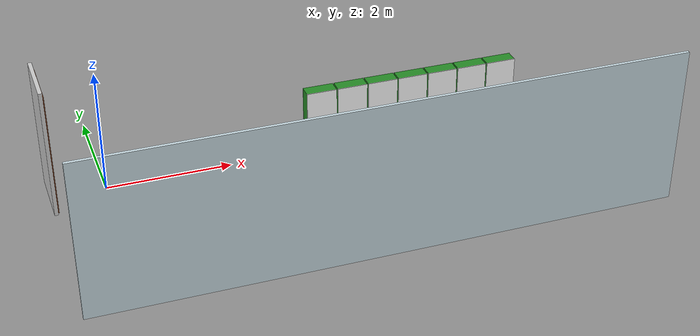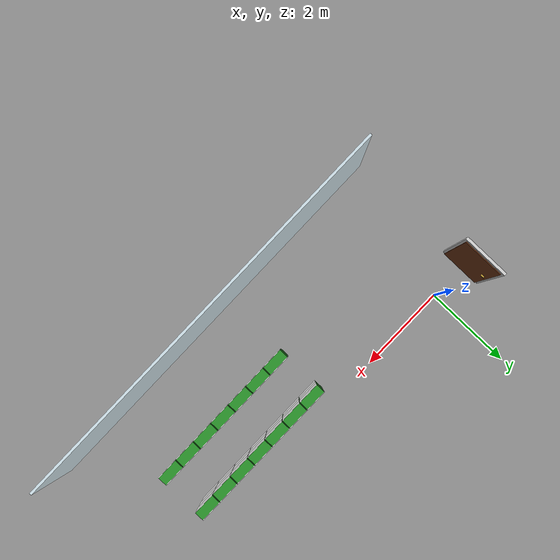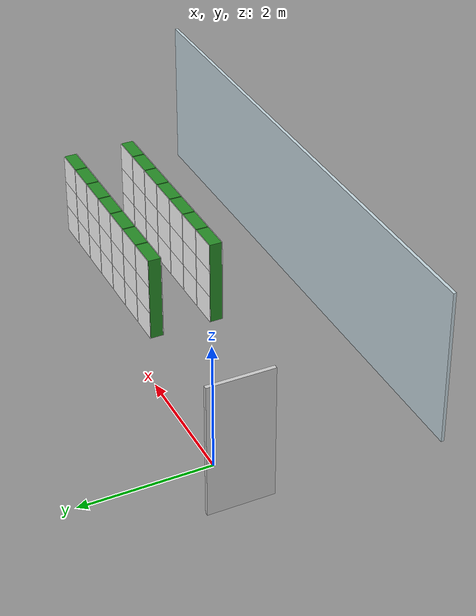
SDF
<sdf version="1.6">
 <world name="greenhouse_world">
  <model name="tomato_r0_p5">
   <static>true</static>
   <pose>3.340 -1.500 0 0 0 0</pose>
   <link name="link">
    <collision name="foliage_col">
     <pose>0 0 0.700 0 0 0</pose>
     <geometry><box><size>0.480 0.200 1.400</size></box></geometry>
    </collision>
    <visual name="foliage_core">
     <pose>0 0 0.700 0 0 0</pose>
     <geometry><box><size>0.480 0.200 1.400</size></box></geometry>
     <material><ambient>0.1 0.4 0.1 1</ambient><diffuse>0.15 0.55 0.15 1</diffuse></material>
    </visual>
    <visual name="foliage_panel_py_0">
     <pose>0 0.105 0.233 0 0 0</pose>
     <geometry><box><size>0.480 0.010 0.467</size></box></geometry>
     <material>
      <diffuse>1 1 1 1</diffuse>
      <specular>0 0 0 1</specular>
      <pbr>
       <metal>
        <albedo_map>../media/materials/textures/img18.jpg</albedo_map>
        <metalness>0.0</metalness>
        <roughness>1.0</roughness>
       </metal>
      </pbr>
     </material>
    </visual>
    <visual name="foliage_panel_py_1">
     <pose>0 0.105 0.700 0 0 0</pose>
     <geometry><box><size>0.480 0.010 0.467</size></box></geometry>
     <material>
      <diffuse>1 1 1 1</diffuse>
      <specular>0 0 0 1</specular>
      <pbr>
       <metal>
        <albedo_map>../media/materials/textures/img04.jpg</albedo_map>
        <metalness>0.0</metalness>
        <roughness>1.0</roughness>
       </metal>
      </pbr>
     </material>
    </visual>
    <visual name="foliage_panel_py_2">
     <pose>0 0.105 1.167 0 0 0</pose>
     <geometry><box><size>0.480 0.010 0.467</size></box></geometry>
     <material>
      <diffuse>1 1 1 1</diffuse>
      <specular>0 0 0 1</specular>
      <pbr>
       <metal>
        <albedo_map>../media/materials/textures/img12.jpg</albedo_map>
        <metalness>0.0</metalness>
        <roughness>1.0</roughness>
       </metal>
      </pbr>
     </material>
    </visual>
    <visual name="foliage_panel_ny_0">
     <pose>0 -0.105 0.233 0 3.14159 0</pose>
     <geometry><box><size>0.480 0.010 0.467</size></box></geometry>
     <material>
      <diffuse>1 1 1 1</diffuse>
      <specular>0 0 0 1</specular>
      <pbr>
       <metal>
        <albedo_map>../media/materials/textures/img14.jpg</albedo_map>
        <metalness>0.0</metalness>
        <roughness>1.0</roughness>
       </metal>
      </pbr>
     </material>
    </visual>
    <visual name="foliage_panel_ny_1">
     <pose>0 -0.105 0.700 0 3.14159 0</pose>
     <geometry><box><size>0.480 0.010 0.467</size></box></geometry>
     <material>
      <diffuse>1 1 1 1</diffuse>
      <specular>0 0 0 1</specular>
      <pbr>
       <metal>
        <albedo_map>../media/materials/textures/img11.jpg</albedo_map>
        <metalness>0.0</metalness>
        <roughness>1.0</roughness>
       </metal>
      </pbr>
     </material>
    </visual>
    <visual name="foliage_panel_ny_2">
     <pose>0 -0.105 1.167 0 3.14159 0</pose>
     <geometry><box><size>0.480 0.010 0.467</size></box></geometry>
     <material>
      <diffuse>1 1 1 1</diffuse>
      <specular>0 0 0 1</specular>
      <pbr>
       <metal>
        <albedo_map>../media/materials/textures/img20.jpg</albedo_map>
        <metalness>0.0</metalness>
        <roughness>1.0</roughness>
       </metal>
      </pbr>
     </material>
    </visual>
   </link>
  </model>
  <model name="tomato_r0_p6">
   <static>true</static>
   <pose>3.840 -1.500 0 0 0 0</pose>
   <link name="link">
    <collision name="foliage_col">
     <pose>0 0 0.700 0 0 0</pose>
     <geometry><box><size>0.480 0.200 1.400</size></box></geometry>
    </collision>
    <visual name="foliage_core">
     <pose>0 0 0.700 0 0 0</pose>
     <geometry><box><size>0.480 0.200 1.400</size></box></geometry>
     <material><ambient>0.1 0.4 0.1 1</ambient><diffuse>0.15 0.55 0.15 1</diffuse></material>
    </visual>
    <visual name="foliage_panel_py_0">
     <pose>0 0.105 0.233 0 0 0</pose>
     <geometry><box><size>0.480 0.010 0.467</size></box></geometry>
     <material>
      <diffuse>1 1 1 1</diffuse>
      <specular>0 0 0 1</specular>
      <pbr>
       <metal>
        <albedo_map>../media/materials/textures/img21.jpg</albedo_map>
        <metalness>0.0</metalness>
        <roughness>1.0</roughness>
       </metal>
      </pbr>
     </material>
    </visual>
    <visual name="foliage_panel_py_1">
     <pose>0 0.105 0.700 0 0 0</pose>
     <geometry><box><size>0.480 0.010 0.467</size></box></geometry>
     <material>
      <diffuse>1 1 1 1</diffuse>
      <specular>0 0 0 1</specular>
      <pbr>
       <metal>
        <albedo_map>../media/materials/textures/img07.jpg</albedo_map>
        <metalness>0.0</metalness>
        <roughness>1.0</roughness>
       </metal>
      </pbr>
     </material>
    </visual>
    <visual name="foliage_panel_py_2">
     <pose>0 0.105 1.167 0 0 0</pose>
     <geometry><box><size>0.480 0.010 0.467</size></box></geometry>
     <material>
      <diffuse>1 1 1 1</diffuse>
      <specular>0 0 0 1</specular>
      <pbr>
       <metal>
        <albedo_map>../media/materials/textures/img18.jpg</albedo_map>
        <metalness>0.0</metalness>
        <roughness>1.0</roughness>
       </metal>
      </pbr>
     </material>
    </visual>
    <visual name="foliage_panel_ny_0">
     <pose>0 -0.105 0.233 0 3.14159 0</pose>
     <geometry><box><size>0.480 0.010 0.467</size></box></geometry>
     <material>
      <diffuse>1 1 1 1</diffuse>
      <specular>0 0 0 1</specular>
      <pbr>
       <metal>
        <albedo_map>../media/materials/textures/img16.jpg</albedo_map>
        <metalness>0.0</metalness>
        <roughness>1.0</roughness>
       </metal>
      </pbr>
     </material>
    </visual>
    <visual name="foliage_panel_ny_1">
     <pose>0 -0.105 0.700 0 3.14159 0</pose>
     <geometry><box><size>0.480 0.010 0.467</size></box></geometry>
     <material>
      <diffuse>1 1 1 1</diffuse>
      <specular>0 0 0 1</specular>
      <pbr>
       <metal>
        <albedo_map>../media/materials/textures/img15.jpg</albedo_map>
        <metalness>0.0</metalness>
        <roughness>1.0</roughness>
       </metal>
      </pbr>
     </material>
    </visual>
    <visual name="foliage_panel_ny_2">
     <pose>0 -0.105 1.167 0 3.14159 0</pose>
     <geometry><box><size>0.480 0.010 0.467</size></box></geometry>
     <material>
      <diffuse>1 1 1 1</diffuse>
      <specular>0 0 0 1</specular>
      <pbr>
       <metal>
        <albedo_map>../media/materials/textures/img17.jpg</albedo_map>
        <metalness>0.0</metalness>
        <roughness>1.0</roughness>
       </metal>
      </pbr>
     </material>
    </visual>
   </link>
  </model>
  <model name="tomato_r0_p7">
   <static>true</static>
   <pose>4.340 -1.500 0 0 0 0</pose>
   <link name="link">
    <collision name="foliage_col">
     <pose>0 0 0.700 0 0 0</pose>
     <geometry><box><size>0.480 0.200 1.400</size></box></geometry>
    </collision>
    <visual name="foliage_core">
     <pose>0 0 0.700 0 0 0</pose>
     <geometry><box><size>0.480 0.200 1.400</size></box></geometry>
     <material><ambient>0.1 0.4 0.1 1</ambient><diffuse>0.15 0.55 0.15 1</diffuse></material>
    </visual>
    <visual name="foliage_panel_py_0">
     <pose>0 0.105 0.233 0 0 0</pose>
     <geometry><box><size>0.480 0.010 0.467</size></box></geometry>
     <material>
      <diffuse>1 1 1 1</diffuse>
      <specular>0 0 0 1</specular>
      <pbr>
       <metal>
        <albedo_map>../media/materials/textures/img09.jpg</albedo_map>
        <metalness>0.0</metalness>
        <roughness>1.0</roughness>
       </metal>
      </pbr>
     </material>
    </visual>
    <visual name="foliage_panel_py_1">
     <pose>0 0.105 0.700 0 0 0</pose>
     <geometry><box><size>0.480 0.010 0.467</size></box></geometry>
     <material>
      <diffuse>1 1 1 1</diffuse>
      <specular>0 0 0 1</specular>
      <pbr>
       <metal>
        <albedo_map>../media/materials/textures/img02.jpg</albedo_map>
        <metalness>0.0</metalness>
        <roughness>1.0</roughness>
       </metal>
      </pbr>
     </material>
    </visual>
    <visual name="foliage_panel_py_2">
     <pose>0 0.105 1.167 0 0 0</pose>
     <geometry><box><size>0.480 0.010 0.467</size></box></geometry>
     <material>
      <diffuse>1 1 1 1</diffuse>
      <specular>0 0 0 1</specular>
      <pbr>
       <metal>
        <albedo_map>../media/materials/textures/img18.jpg</albedo_map>
        <metalness>0.0</metalness>
        <roughness>1.0</roughness>
       </metal>
      </pbr>
     </material>
    </visual>
    <visual name="foliage_panel_ny_0">
     <pose>0 -0.105 0.233 0 3.14159 0</pose>
     <geometry><box><size>0.480 0.010 0.467</size></box></geometry>
     <material>
      <diffuse>1 1 1 1</diffuse>
      <specular>0 0 0 1</specular>
      <pbr>
       <metal>
        <albedo_map>../media/materials/textures/img01.jpg</albedo_map>
        <metalness>0.0</metalness>
        <roughness>1.0</roughness>
       </metal>
      </pbr>
     </material>
    </visual>
    <visual name="foliage_panel_ny_1">
     <pose>0 -0.105 0.700 0 3.14159 0</pose>
     <geometry><box><size>0.480 0.010 0.467</size></box></geometry>
     <material>
      <diffuse>1 1 1 1</diffuse>
      <specular>0 0 0 1</specular>
      <pbr>
       <metal>
        <albedo_map>../media/materials/textures/img03.jpg</albedo_map>
        <metalness>0.0</metalness>
        <roughness>1.0</roughness>
       </metal>
      </pbr>
     </material>
    </visual>
    <visual name="foliage_panel_ny_2">
     <pose>0 -0.105 1.167 0 3.14159 0</pose>
     <geometry><box><size>0.480 0.010 0.467</size></box></geometry>
     <material>
      <diffuse>1 1 1 1</diffuse>
      <specular>0 0 0 1</specular>
      <pbr>
       <metal>
        <albedo_map>../media/materials/textures/img24.jpg</albedo_map>
        <metalness>0.0</metalness>
        <roughness>1.0</roughness>
       </metal>
      </pbr>
     </material>
    </visual>
   </link>
  </model>
  <model name="tomato_r0_p8">
   <static>true</static>
   <pose>4.840 -1.500 0 0 0 0</pose>
   <link name="link">
    <collision name="foliage_col">
     <pose>0 0 0.700 0 0 0</pose>
     <geometry><box><size>0.480 0.200 1.400</size></box></geometry>
    </collision>
    <visual name="foliage_core">
     <pose>0 0 0.700 0 0 0</pose>
     <geometry><box><size>0.480 0.200 1.400</size></box></geometry>
     <material><ambient>0.1 0.4 0.1 1</ambient><diffuse>0.15 0.55 0.15 1</diffuse></material>
    </visual>
    <visual name="foliage_panel_py_0">
     <pose>0 0.105 0.233 0 0 0</pose>
     <geometry><box><size>0.480 0.010 0.467</size></box></geometry>
     <material>
      <diffuse>1 1 1 1</diffuse>
      <specular>0 0 0 1</specular>
      <pbr>
       <metal>
        <albedo_map>../media/materials/textures/img13.jpg</albedo_map>
        <metalness>0.0</metalness>
        <roughness>1.0</roughness>
       </metal>
      </pbr>
     </material>
    </visual>
    <visual name="foliage_panel_py_1">
     <pose>0 0.105 0.700 0 0 0</pose>
     <geometry><box><size>0.480 0.010 0.467</size></box></geometry>
     <material>
      <diffuse>1 1 1 1</diffuse>
      <specular>0 0 0 1</specular>
      <pbr>
       <metal>
        <albedo_map>../media/materials/textures/img23.jpg</albedo_map>
        <metalness>0.0</metalness>
        <roughness>1.0</roughness>
       </metal>
      </pbr>
     </material>
    </visual>
    <visual name="foliage_panel_py_2">
     <pose>0 0.105 1.167 0 0 0</pose>
     <geometry><box><size>0.480 0.010 0.467</size></box></geometry>
     <material>
      <diffuse>1 1 1 1</diffuse>
      <specular>0 0 0 1</specular>
      <pbr>
       <metal>
        <albedo_map>../media/materials/textures/img22.jpg</albedo_map>
        <metalness>0.0</metalness>
        <roughness>1.0</roughness>
       </metal>
      </pbr>
     </material>
    </visual>
    <visual name="foliage_panel_ny_0">
     <pose>0 -0.105 0.233 0 3.14159 0</pose>
     <geometry><box><size>0.480 0.010 0.467</size></box></geometry>
     <material>
      <diffuse>1 1 1 1</diffuse>
      <specular>0 0 0 1</specular>
      <pbr>
       <metal>
        <albedo_map>../media/materials/textures/img21.jpg</albedo_map>
        <metalness>0.0</metalness>
        <roughness>1.0</roughness>
       </metal>
      </pbr>
     </material>
    </visual>
    <visual name="foliage_panel_ny_1">
     <pose>0 -0.105 0.700 0 3.14159 0</pose>
     <geometry><box><size>0.480 0.010 0.467</size></box></geometry>
     <material>
      <diffuse>1 1 1 1</diffuse>
      <specular>0 0 0 1</specular>
      <pbr>
       <metal>
        <albedo_map>../media/materials/textures/img01.jpg</albedo_map>
        <metalness>0.0</metalness>
        <roughness>1.0</roughness>
       </metal>
      </pbr>
     </material>
    </visual>
    <visual name="foliage_panel_ny_2">
     <pose>0 -0.105 1.167 0 3.14159 0</pose>
     <geometry><box><size>0.480 0.010 0.467</size></box></geometry>
     <material>
      <diffuse>1 1 1 1</diffuse>
      <specular>0 0 0 1</specular>
      <pbr>
       <metal>
        <albedo_map>../media/materials/textures/img20.jpg</albedo_map>
        <metalness>0.0</metalness>
        <roughness>1.0</roughness>
       </metal>
      </pbr>
     </material>
    </visual>
   </link>
  </model>
  <model name="tomato_r0_p9">
   <static>true</static>
   <pose>5.340 -1.500 0 0 0 0</pose>
   <link name="link">
    <collision name="foliage_col">
     <pose>0 0 0.700 0 0 0</pose>
     <geometry><box><size>0.480 0.200 1.400</size></box></geometry>
    </collision>
    <visual name="foliage_core">
     <pose>0 0 0.700 0 0 0</pose>
     <geometry><box><size>0.480 0.200 1.400</size></box></geometry>
     <material><ambient>0.1 0.4 0.1 1</ambient><diffuse>0.15 0.55 0.15 1</diffuse></material>
    </visual>
    <visual name="foliage_panel_py_0">
     <pose>0 0.105 0.233 0 0 0</pose>
     <geometry><box><size>0.480 0.010 0.467</size></box></geometry>
     <material>
      <diffuse>1 1 1 1</diffuse>
      <specular>0 0 0 1</specular>
      <pbr>
       <metal>
        <albedo_map>../media/materials/textures/img16.jpg</albedo_map>
        <metalness>0.0</metalness>
        <roughness>1.0</roughness>
       </metal>
      </pbr>
     </material>
    </visual>
    <visual name="foliage_panel_py_1">
     <pose>0 0.105 0.700 0 0 0</pose>
     <geometry><box><size>0.480 0.010 0.467</size></box></geometry>
     <material>
      <diffuse>1 1 1 1</diffuse>
      <specular>0 0 0 1</specular>
      <pbr>
       <metal>
        <albedo_map>../media/materials/textures/img11.jpg</albedo_map>
        <metalness>0.0</metalness>
        <roughness>1.0</roughness>
       </metal>
      </pbr>
     </material>
    </visual>
    <visual name="foliage_panel_py_2">
     <pose>0 0.105 1.167 0 0 0</pose>
     <geometry><box><size>0.480 0.010 0.467</size></box></geometry>
     <material>
      <diffuse>1 1 1 1</diffuse>
      <specular>0 0 0 1</specular>
      <pbr>
       <metal>
        <albedo_map>../media/materials/textures/img08.jpg</albedo_map>
        <metalness>0.0</metalness>
        <roughness>1.0</roughness>
       </metal>
      </pbr>
     </material>
    </visual>
    <visual name="foliage_panel_ny_0">
     <pose>0 -0.105 0.233 0 3.14159 0</pose>
     <geometry><box><size>0.480 0.010 0.467</size></box></geometry>
     <material>
      <diffuse>1 1 1 1</diffuse>
      <specular>0 0 0 1</specular>
      <pbr>
       <metal>
        <albedo_map>../media/materials/textures/img24.jpg</albedo_map>
        <metalness>0.0</metalness>
        <roughness>1.0</roughness>
       </metal>
      </pbr>
     </material>
    </visual>
    <visual name="foliage_panel_ny_1">
     <pose>0 -0.105 0.700 0 3.14159 0</pose>
     <geometry><box><size>0.480 0.010 0.467</size></box></geometry>
     <material>
      <diffuse>1 1 1 1</diffuse>
      <specular>0 0 0 1</specular>
      <pbr>
       <metal>
        <albedo_map>../media/materials/textures/img11.jpg</albedo_map>
        <metalness>0.0</metalness>
        <roughness>1.0</roughness>
       </metal>
      </pbr>
     </material>
    </visual>
    <visual name="foliage_panel_ny_2">
     <pose>0 -0.105 1.167 0 3.14159 0</pose>
     <geometry><box><size>0.480 0.010 0.467</size></box></geometry>
     <material>
      <diffuse>1 1 1 1</diffuse>
      <specular>0 0 0 1</specular>
      <pbr>
       <metal>
        <albedo_map>../media/materials/textures/img23.jpg</albedo_map>
        <metalness>0.0</metalness>
        <roughness>1.0</roughness>
       </metal>
      </pbr>
     </material>
    </visual>
   </link>
  </model>
  <model name="tomato_r0_p10">
   <static>true</static>
   <pose>5.840 -1.500 0 0 0 0</pose>
   <link name="link">
    <collision name="foliage_col">
     <pose>0 0 0.700 0 0 0</pose>
     <geometry><box><size>0.480 0.200 1.400</size></box></geometry>
    </collision>
    <visual name="foliage_core">
     <pose>0 0 0.700 0 0 0</pose>
     <geometry><box><size>0.480 0.200 1.400</size></box></geometry>
     <material><ambient>0.1 0.4 0.1 1</ambient><diffuse>0.15 0.55 0.15 1</diffuse></material>
    </visual>
    <visual name="foliage_panel_py_0">
     <pose>0 0.105 0.233 0 0 0</pose>
     <geometry><box><size>0.480 0.010 0.467</size></box></geometry>
     <material>
      <diffuse>1 1 1 1</diffuse>
      <specular>0 0 0 1</specular>
      <pbr>
       <metal>
        <albedo_map>../media/materials/textures/img03.jpg</albedo_map>
        <metalness>0.0</metalness>
        <roughness>1.0</roughness>
       </metal>
      </pbr>
     </material>
    </visual>
    <visual name="foliage_panel_py_1">
     <pose>0 0.105 0.700 0 0 0</pose>
     <geometry><box><size>0.480 0.010 0.467</size></box></geometry>
     <material>
      <diffuse>1 1 1 1</diffuse>
      <specular>0 0 0 1</specular>
      <pbr>
       <metal>
        <albedo_map>../media/materials/textures/img07.jpg</albedo_map>
        <metalness>0.0</metalness>
        <roughness>1.0</roughness>
       </metal>
      </pbr>
     </material>
    </visual>
    <visual name="foliage_panel_py_2">
     <pose>0 0.105 1.167 0 0 0</pose>
     <geometry><box><size>0.480 0.010 0.467</size></box></geometry>
     <material>
      <diffuse>1 1 1 1</diffuse>
      <specular>0 0 0 1</specular>
      <pbr>
       <metal>
        <albedo_map>../media/materials/textures/img19.jpg</albedo_map>
        <metalness>0.0</metalness>
        <roughness>1.0</roughness>
       </metal>
      </pbr>
     </material>
    </visual>
    <visual name="foliage_panel_ny_0">
     <pose>0 -0.105 0.233 0 3.14159 0</pose>
     <geometry><box><size>0.480 0.010 0.467</size></box></geometry>
     <material>
      <diffuse>1 1 1 1</diffuse>
      <specular>0 0 0 1</specular>
      <pbr>
       <metal>
        <albedo_map>../media/materials/textures/img08.jpg</albedo_map>
        <metalness>0.0</metalness>
        <roughness>1.0</roughness>
       </metal>
      </pbr>
     </material>
    </visual>
    <visual name="foliage_panel_ny_1">
     <pose>0 -0.105 0.700 0 3.14159 0</pose>
     <geometry><box><size>0.480 0.010 0.467</size></box></geometry>
     <material>
      <diffuse>1 1 1 1</diffuse>
      <specular>0 0 0 1</specular>
      <pbr>
       <metal>
        <albedo_map>../media/materials/textures/img08.jpg</albedo_map>
        <metalness>0.0</metalness>
        <roughness>1.0</roughness>
       </metal>
      </pbr>
     </material>
    </visual>
    <visual name="foliage_panel_ny_2">
     <pose>0 -0.105 1.167 0 3.14159 0</pose>
     <geometry><box><size>0.480 0.010 0.467</size></box></geometry>
     <material>
      <diffuse>1 1 1 1</diffuse>
      <specular>0 0 0 1</specular>
      <pbr>
       <metal>
        <albedo_map>../media/materials/textures/img05.jpg</albedo_map>
        <metalness>0.0</metalness>
        <roughness>1.0</roughness>
       </metal>
      </pbr>
     </material>
    </visual>
   </link>
  </model>
  <model name="tomato_r0_p11">
   <static>true</static>
   <pose>6.340 -1.500 0 0 0 0</pose>
   <link name="link">
    <collision name="foliage_col">
     <pose>0 0 0.700 0 0 0</pose>
     <geometry><box><size>0.480 0.200 1.400</size></box></geometry>
    </collision>
    <visual name="foliage_core">
     <pose>0 0 0.700 0 0 0</pose>
     <geometry><box><size>0.480 0.200 1.400</size></box></geometry>
     <material><ambient>0.1 0.4 0.1 1</ambient><diffuse>0.15 0.55 0.15 1</diffuse></material>
    </visual>
    <visual name="foliage_panel_py_0">
     <pose>0 0.105 0.233 0 0 0</pose>
     <geometry><box><size>0.480 0.010 0.467</size></box></geometry>
     <material>
      <diffuse>1 1 1 1</diffuse>
      <specular>0 0 0 1</specular>
      <pbr>
       <metal>
        <albedo_map>../media/materials/textures/img18.jpg</albedo_map>
        <metalness>0.0</metalness>
        <roughness>1.0</roughness>
       </metal>
      </pbr>
     </material>
    </visual>
    <visual name="foliage_panel_py_1">
     <pose>0 0.105 0.700 0 0 0</pose>
     <geometry><box><size>0.480 0.010 0.467</size></box></geometry>
     <material>
      <diffuse>1 1 1 1</diffuse>
      <specular>0 0 0 1</specular>
      <pbr>
       <metal>
        <albedo_map>../media/materials/textures/img15.jpg</albedo_map>
        <metalness>0.0</metalness>
        <roughness>1.0</roughness>
       </metal>
      </pbr>
     </material>
    </visual>
    <visual name="foliage_panel_py_2">
     <pose>0 0.105 1.167 0 0 0</pose>
     <geometry><box><size>0.480 0.010 0.467</size></box></geometry>
     <material>
      <diffuse>1 1 1 1</diffuse>
      <specular>0 0 0 1</specular>
      <pbr>
       <metal>
        <albedo_map>../media/materials/textures/img03.jpg</albedo_map>
        <metalness>0.0</metalness>
        <roughness>1.0</roughness>
       </metal>
      </pbr>
     </material>
    </visual>
    <visual name="foliage_panel_ny_0">
     <pose>0 -0.105 0.233 0 3.14159 0</pose>
     <geometry><box><size>0.480 0.010 0.467</size></box></geometry>
     <material>
      <diffuse>1 1 1 1</diffuse>
      <specular>0 0 0 1</specular>
      <pbr>
       <metal>
        <albedo_map>../media/materials/textures/img03.jpg</albedo_map>
        <metalness>0.0</metalness>
        <roughness>1.0</roughness>
       </metal>
      </pbr>
     </material>
    </visual>
    <visual name="foliage_panel_ny_1">
     <pose>0 -0.105 0.700 0 3.14159 0</pose>
     <geometry><box><size>0.480 0.010 0.467</size></box></geometry>
     <material>
      <diffuse>1 1 1 1</diffuse>
      <specular>0 0 0 1</specular>
      <pbr>
       <metal>
        <albedo_map>../media/materials/textures/img11.jpg</albedo_map>
        <metalness>0.0</metalness>
        <roughness>1.0</roughness>
       </metal>
      </pbr>
     </material>
    </visual>
    <visual name="foliage_panel_ny_2">
     <pose>0 -0.105 1.167 0 3.14159 0</pose>
     <geometry><box><size>0.480 0.010 0.467</size></box></geometry>
     <material>
      <diffuse>1 1 1 1</diffuse>
      <specular>0 0 0 1</specular>
      <pbr>
       <metal>
        <albedo_map>../media/materials/textures/img17.jpg</albedo_map>
        <metalness>0.0</metalness>
        <roughness>1.0</roughness>
       </metal>
      </pbr>
     </material>
    </visual>
   </link>
  </model>
  <model name="tomato_r1_p5">
   <static>true</static>
   <pose>3.340 -0.500 0 0 0 0</pose>
   <link name="link">
    <collision name="foliage_col">
     <pose>0 0 0.700 0 0 0</pose>
     <geometry><box><size>0.480 0.200 1.400</size></box></geometry>
    </collision>
    <visual name="foliage_core">
     <pose>0 0 0.700 0 0 0</pose>
     <geometry><box><size>0.480 0.200 1.400</size></box></geometry>
     <material><ambient>0.1 0.4 0.1 1</ambient><diffuse>0.15 0.55 0.15 1</diffuse></material>
    </visual>
    <visual name="foliage_panel_py_0">
     <pose>0 0.105 0.233 0 0 0</pose>
     <geometry><box><size>0.480 0.010 0.467</size></box></geometry>
     <material>
      <diffuse>1 1 1 1</diffuse>
      <specular>0 0 0 1</specular>
      <pbr>
       <metal>
        <albedo_map>../media/materials/textures/img16.jpg</albedo_map>
        <metalness>0.0</metalness>
        <roughness>1.0</roughness>
       </metal>
      </pbr>
     </material>
    </visual>
    <visual name="foliage_panel_py_1">
     <pose>0 0.105 0.700 0 0 0</pose>
     <geometry><box><size>0.480 0.010 0.467</size></box></geometry>
     <material>
      <diffuse>1 1 1 1</diffuse>
      <specular>0 0 0 1</specular>
      <pbr>
       <metal>
        <albedo_map>../media/materials/textures/img03.jpg</albedo_map>
        <metalness>0.0</metalness>
        <roughness>1.0</roughness>
       </metal>
      </pbr>
     </material>
    </visual>
    <visual name="foliage_panel_py_2">
     <pose>0 0.105 1.167 0 0 0</pose>
     <geometry><box><size>0.480 0.010 0.467</size></box></geometry>
     <material>
      <diffuse>1 1 1 1</diffuse>
      <specular>0 0 0 1</specular>
      <pbr>
       <metal>
        <albedo_map>../media/materials/textures/img03.jpg</albedo_map>
        <metalness>0.0</metalness>
        <roughness>1.0</roughness>
       </metal>
      </pbr>
     </material>
    </visual>
    <visual name="foliage_panel_ny_0">
     <pose>0 -0.105 0.233 0 3.14159 0</pose>
     <geometry><box><size>0.480 0.010 0.467</size></box></geometry>
     <material>
      <diffuse>1 1 1 1</diffuse>
      <specular>0 0 0 1</specular>
      <pbr>
       <metal>
        <albedo_map>../media/materials/textures/img22.jpg</albedo_map>
        <metalness>0.0</metalness>
        <roughness>1.0</roughness>
       </metal>
      </pbr>
     </material>
    </visual>
    <visual name="foliage_panel_ny_1">
     <pose>0 -0.105 0.700 0 3.14159 0</pose>
     <geometry><box><size>0.480 0.010 0.467</size></box></geometry>
     <material>
      <diffuse>1 1 1 1</diffuse>
      <specular>0 0 0 1</specular>
      <pbr>
       <metal>
        <albedo_map>../media/materials/textures/img05.jpg</albedo_map>
        <metalness>0.0</metalness>
        <roughness>1.0</roughness>
       </metal>
      </pbr>
     </material>
    </visual>
    <visual name="foliage_panel_ny_2">
     <pose>0 -0.105 1.167 0 3.14159 0</pose>
     <geometry><box><size>0.480 0.010 0.467</size></box></geometry>
     <material>
      <diffuse>1 1 1 1</diffuse>
      <specular>0 0 0 1</specular>
      <pbr>
       <metal>
        <albedo_map>../media/materials/textures/img05.jpg</albedo_map>
        <metalness>0.0</metalness>
        <roughness>1.0</roughness>
       </metal>
      </pbr>
     </material>
    </visual>
   </link>
  </model>
  <model name="tomato_r1_p6">
   <static>true</static>
   <pose>3.840 -0.500 0 0 0 0</pose>
   <link name="link">
    <collision name="foliage_col">
     <pose>0 0 0.700 0 0 0</pose>
     <geometry><box><size>0.480 0.200 1.400</size></box></geometry>
    </collision>
    <visual name="foliage_core">
     <pose>0 0 0.700 0 0 0</pose>
     <geometry><box><size>0.480 0.200 1.400</size></box></geometry>
     <material><ambient>0.1 0.4 0.1 1</ambient><diffuse>0.15 0.55 0.15 1</diffuse></material>
    </visual>
    <visual name="foliage_panel_py_0">
     <pose>0 0.105 0.233 0 0 0</pose>
     <geometry><box><size>0.480 0.010 0.467</size></box></geometry>
     <material>
      <diffuse>1 1 1 1</diffuse>
      <specular>0 0 0 1</specular>
      <pbr>
       <metal>
        <albedo_map>../media/materials/textures/img02.jpg</albedo_map>
        <metalness>0.0</metalness>
        <roughness>1.0</roughness>
       </metal>
      </pbr>
     </material>
    </visual>
    <visual name="foliage_panel_py_1">
     <pose>0 0.105 0.700 0 0 0</pose>
     <geometry><box><size>0.480 0.010 0.467</size></box></geometry>
     <material>
      <diffuse>1 1 1 1</diffuse>
      <specular>0 0 0 1</specular>
      <pbr>
       <metal>
        <albedo_map>../media/materials/textures/img03.jpg</albedo_map>
        <metalness>0.0</metalness>
        <roughness>1.0</roughness>
       </metal>
      </pbr>
     </material>
    </visual>
    <visual name="foliage_panel_py_2">
     <pose>0 0.105 1.167 0 0 0</pose>
     <geometry><box><size>0.480 0.010 0.467</size></box></geometry>
     <material>
      <diffuse>1 1 1 1</diffuse>
      <specular>0 0 0 1</specular>
      <pbr>
       <metal>
        <albedo_map>../media/materials/textures/img23.jpg</albedo_map>
        <metalness>0.0</metalness>
        <roughness>1.0</roughness>
       </metal>
      </pbr>
     </material>
    </visual>
    <visual name="foliage_panel_ny_0">
     <pose>0 -0.105 0.233 0 3.14159 0</pose>
     <geometry><box><size>0.480 0.010 0.467</size></box></geometry>
     <material>
      <diffuse>1 1 1 1</diffuse>
      <specular>0 0 0 1</specular>
      <pbr>
       <metal>
        <albedo_map>../media/materials/textures/img18.jpg</albedo_map>
        <metalness>0.0</metalness>
        <roughness>1.0</roughness>
       </metal>
      </pbr>
     </material>
    </visual>
    <visual name="foliage_panel_ny_1">
     <pose>0 -0.105 0.700 0 3.14159 0</pose>
     <geometry><box><size>0.480 0.010 0.467</size></box></geometry>
     <material>
      <diffuse>1 1 1 1</diffuse>
      <specular>0 0 0 1</specular>
      <pbr>
       <metal>
        <albedo_map>../media/materials/textures/img22.jpg</albedo_map>
        <metalness>0.0</metalness>
        <roughness>1.0</roughness>
       </metal>
      </pbr>
     </material>
    </visual>
    <visual name="foliage_panel_ny_2">
     <pose>0 -0.105 1.167 0 3.14159 0</pose>
     <geometry><box><size>0.480 0.010 0.467</size></box></geometry>
     <material>
      <diffuse>1 1 1 1</diffuse>
      <specular>0 0 0 1</specular>
      <pbr>
       <metal>
        <albedo_map>../media/materials/textures/img13.jpg</albedo_map>
        <metalness>0.0</metalness>
        <roughness>1.0</roughness>
       </metal>
      </pbr>
     </material>
    </visual>
   </link>
  </model>
  <model name="tomato_r1_p7">
   <static>true</static>
   <pose>4.340 -0.500 0 0 0 0</pose>
   <link name="link">
    <collision name="foliage_col">
     <pose>0 0 0.700 0 0 0</pose>
     <geometry><box><size>0.480 0.200 1.400</size></box></geometry>
    </collision>
    <visual name="foliage_core">
     <pose>0 0 0.700 0 0 0</pose>
     <geometry><box><size>0.480 0.200 1.400</size></box></geometry>
     <material><ambient>0.1 0.4 0.1 1</ambient><diffuse>0.15 0.55 0.15 1</diffuse></material>
    </visual>
    <visual name="foliage_panel_py_0">
     <pose>0 0.105 0.233 0 0 0</pose>
     <geometry><box><size>0.480 0.010 0.467</size></box></geometry>
     <material>
      <diffuse>1 1 1 1</diffuse>
      <specular>0 0 0 1</specular>
      <pbr>
       <metal>
        <albedo_map>../media/materials/textures/img23.jpg</albedo_map>
        <metalness>0.0</metalness>
        <roughness>1.0</roughness>
       </metal>
      </pbr>
     </material>
    </visual>
    <visual name="foliage_panel_py_1">
     <pose>0 0.105 0.700 0 0 0</pose>
     <geometry><box><size>0.480 0.010 0.467</size></box></geometry>
     <material>
      <diffuse>1 1 1 1</diffuse>
      <specular>0 0 0 1</specular>
      <pbr>
       <metal>
        <albedo_map>../media/materials/textures/img17.jpg</albedo_map>
        <metalness>0.0</metalness>
        <roughness>1.0</roughness>
       </metal>
      </pbr>
     </material>
    </visual>
    <visual name="foliage_panel_py_2">
     <pose>0 0.105 1.167 0 0 0</pose>
     <geometry><box><size>0.480 0.010 0.467</size></box></geometry>
     <material>
      <diffuse>1 1 1 1</diffuse>
      <specular>0 0 0 1</specular>
      <pbr>
       <metal>
        <albedo_map>../media/materials/textures/img09.jpg</albedo_map>
        <metalness>0.0</metalness>
        <roughness>1.0</roughness>
       </metal>
      </pbr>
     </material>
    </visual>
    <visual name="foliage_panel_ny_0">
     <pose>0 -0.105 0.233 0 3.14159 0</pose>
     <geometry><box><size>0.480 0.010 0.467</size></box></geometry>
     <material>
      <diffuse>1 1 1 1</diffuse>
      <specular>0 0 0 1</specular>
      <pbr>
       <metal>
        <albedo_map>../media/materials/textures/img17.jpg</albedo_map>
        <metalness>0.0</metalness>
        <roughness>1.0</roughness>
       </metal>
      </pbr>
     </material>
    </visual>
    <visual name="foliage_panel_ny_1">
     <pose>0 -0.105 0.700 0 3.14159 0</pose>
     <geometry><box><size>0.480 0.010 0.467</size></box></geometry>
     <material>
      <diffuse>1 1 1 1</diffuse>
      <specular>0 0 0 1</specular>
      <pbr>
       <metal>
        <albedo_map>../media/materials/textures/img08.jpg</albedo_map>
        <metalness>0.0</metalness>
        <roughness>1.0</roughness>
       </metal>
      </pbr>
     </material>
    </visual>
    <visual name="foliage_panel_ny_2">
     <pose>0 -0.105 1.167 0 3.14159 0</pose>
     <geometry><box><size>0.480 0.010 0.467</size></box></geometry>
     <material>
      <diffuse>1 1 1 1</diffuse>
      <specular>0 0 0 1</specular>
      <pbr>
       <metal>
        <albedo_map>../media/materials/textures/img07.jpg</albedo_map>
        <metalness>0.0</metalness>
        <roughness>1.0</roughness>
       </metal>
      </pbr>
     </material>
    </visual>
   </link>
  </model>
  <model name="tomato_r1_p8">
   <static>true</static>
   <pose>4.840 -0.500 0 0 0 0</pose>
   <link name="link">
    <collision name="foliage_col">
     <pose>0 0 0.700 0 0 0</pose>
     <geometry><box><size>0.480 0.200 1.400</size></box></geometry>
    </collision>
    <visual name="foliage_core">
     <pose>0 0 0.700 0 0 0</pose>
     <geometry><box><size>0.480 0.200 1.400</size></box></geometry>
     <material><ambient>0.1 0.4 0.1 1</ambient><diffuse>0.15 0.55 0.15 1</diffuse></material>
    </visual>
    <visual name="foliage_panel_py_0">
     <pose>0 0.105 0.233 0 0 0</pose>
     <geometry><box><size>0.480 0.010 0.467</size></box></geometry>
     <material>
      <diffuse>1 1 1 1</diffuse>
      <specular>0 0 0 1</specular>
      <pbr>
       <metal>
        <albedo_map>../media/materials/textures/img22.jpg</albedo_map>
        <metalness>0.0</metalness>
        <roughness>1.0</roughness>
       </metal>
      </pbr>
     </material>
    </visual>
    <visual name="foliage_panel_py_1">
     <pose>0 0.105 0.700 0 0 0</pose>
     <geometry><box><size>0.480 0.010 0.467</size></box></geometry>
     <material>
      <diffuse>1 1 1 1</diffuse>
      <specular>0 0 0 1</specular>
      <pbr>
       <metal>
        <albedo_map>../media/materials/textures/img19.jpg</albedo_map>
        <metalness>0.0</metalness>
        <roughness>1.0</roughness>
       </metal>
      </pbr>
     </material>
    </visual>
    <visual name="foliage_panel_py_2">
     <pose>0 0.105 1.167 0 0 0</pose>
     <geometry><box><size>0.480 0.010 0.467</size></box></geometry>
     <material>
      <diffuse>1 1 1 1</diffuse>
      <specular>0 0 0 1</specular>
      <pbr>
       <metal>
        <albedo_map>../media/materials/textures/img14.jpg</albedo_map>
        <metalness>0.0</metalness>
        <roughness>1.0</roughness>
       </metal>
      </pbr>
     </material>
    </visual>
    <visual name="foliage_panel_ny_0">
     <pose>0 -0.105 0.233 0 3.14159 0</pose>
     <geometry><box><size>0.480 0.010 0.467</size></box></geometry>
     <material>
      <diffuse>1 1 1 1</diffuse>
      <specular>0 0 0 1</specular>
      <pbr>
       <metal>
        <albedo_map>../media/materials/textures/img19.jpg</albedo_map>
        <metalness>0.0</metalness>
        <roughness>1.0</roughness>
       </metal>
      </pbr>
     </material>
    </visual>
    <visual name="foliage_panel_ny_1">
     <pose>0 -0.105 0.700 0 3.14159 0</pose>
     <geometry><box><size>0.480 0.010 0.467</size></box></geometry>
     <material>
      <diffuse>1 1 1 1</diffuse>
      <specular>0 0 0 1</specular>
      <pbr>
       <metal>
        <albedo_map>../media/materials/textures/img09.jpg</albedo_map>
        <metalness>0.0</metalness>
        <roughness>1.0</roughness>
       </metal>
      </pbr>
     </material>
    </visual>
    <visual name="foliage_panel_ny_2">
     <pose>0 -0.105 1.167 0 3.14159 0</pose>
     <geometry><box><size>0.480 0.010 0.467</size></box></geometry>
     <material>
      <diffuse>1 1 1 1</diffuse>
      <specular>0 0 0 1</specular>
      <pbr>
       <metal>
        <albedo_map>../media/materials/textures/img15.jpg</albedo_map>
        <metalness>0.0</metalness>
        <roughness>1.0</roughness>
       </metal>
      </pbr>
     </material>
    </visual>
   </link>
  </model>
  <model name="tomato_r1_p9">
   <static>true</static>
   <pose>5.340 -0.500 0 0 0 0</pose>
   <link name="link">
    <collision name="foliage_col">
     <pose>0 0 0.700 0 0 0</pose>
     <geometry><box><size>0.480 0.200 1.400</size></box></geometry>
    </collision>
    <visual name="foliage_core">
     <pose>0 0 0.700 0 0 0</pose>
     <geometry><box><size>0.480 0.200 1.400</size></box></geometry>
     <material><ambient>0.1 0.4 0.1 1</ambient><diffuse>0.15 0.55 0.15 1</diffuse></material>
    </visual>
    <visual name="foliage_panel_py_0">
     <pose>0 0.105 0.233 0 0 0</pose>
     <geometry><box><size>0.480 0.010 0.467</size></box></geometry>
     <material>
      <diffuse>1 1 1 1</diffuse>
      <specular>0 0 0 1</specular>
      <pbr>
       <metal>
        <albedo_map>../media/materials/textures/img16.jpg</albedo_map>
        <metalness>0.0</metalness>
        <roughness>1.0</roughness>
       </metal>
      </pbr>
     </material>
    </visual>
    <visual name="foliage_panel_py_1">
     <pose>0 0.105 0.700 0 0 0</pose>
     <geometry><box><size>0.480 0.010 0.467</size></box></geometry>
     <material>
      <diffuse>1 1 1 1</diffuse>
      <specular>0 0 0 1</specular>
      <pbr>
       <metal>
        <albedo_map>../media/materials/textures/img22.jpg</albedo_map>
        <metalness>0.0</metalness>
        <roughness>1.0</roughness>
       </metal>
      </pbr>
     </material>
    </visual>
    <visual name="foliage_panel_py_2">
     <pose>0 0.105 1.167 0 0 0</pose>
     <geometry><box><size>0.480 0.010 0.467</size></box></geometry>
     <material>
      <diffuse>1 1 1 1</diffuse>
      <specular>0 0 0 1</specular>
      <pbr>
       <metal>
        <albedo_map>../media/materials/textures/img21.jpg</albedo_map>
        <metalness>0.0</metalness>
        <roughness>1.0</roughness>
       </metal>
      </pbr>
     </material>
    </visual>
    <visual name="foliage_panel_ny_0">
     <pose>0 -0.105 0.233 0 3.14159 0</pose>
     <geometry><box><size>0.480 0.010 0.467</size></box></geometry>
     <material>
      <diffuse>1 1 1 1</diffuse>
      <specular>0 0 0 1</specular>
      <pbr>
       <metal>
        <albedo_map>../media/materials/textures/img23.jpg</albedo_map>
        <metalness>0.0</metalness>
        <roughness>1.0</roughness>
       </metal>
      </pbr>
     </material>
    </visual>
    <visual name="foliage_panel_ny_1">
     <pose>0 -0.105 0.700 0 3.14159 0</pose>
     <geometry><box><size>0.480 0.010 0.467</size></box></geometry>
     <material>
      <diffuse>1 1 1 1</diffuse>
      <specular>0 0 0 1</specular>
      <pbr>
       <metal>
        <albedo_map>../media/materials/textures/img12.jpg</albedo_map>
        <metalness>0.0</metalness>
        <roughness>1.0</roughness>
       </metal>
      </pbr>
     </material>
    </visual>
    <visual name="foliage_panel_ny_2">
     <pose>0 -0.105 1.167 0 3.14159 0</pose>
     <geometry><box><size>0.480 0.010 0.467</size></box></geometry>
     <material>
      <diffuse>1 1 1 1</diffuse>
      <specular>0 0 0 1</specular>
      <pbr>
       <metal>
        <albedo_map>../media/materials/textures/img03.jpg</albedo_map>
        <metalness>0.0</metalness>
        <roughness>1.0</roughness>
       </metal>
      </pbr>
     </material>
    </visual>
   </link>
  </model>
  <model name="tomato_r1_p10">
   <static>true</static>
   <pose>5.840 -0.500 0 0 0 0</pose>
   <link name="link">
    <collision name="foliage_col">
     <pose>0 0 0.700 0 0 0</pose>
     <geometry><box><size>0.480 0.200 1.400</size></box></geometry>
    </collision>
    <visual name="foliage_core">
     <pose>0 0 0.700 0 0 0</pose>
     <geometry><box><size>0.480 0.200 1.400</size></box></geometry>
     <material><ambient>0.1 0.4 0.1 1</ambient><diffuse>0.15 0.55 0.15 1</diffuse></material>
    </visual>
    <visual name="foliage_panel_py_0">
     <pose>0 0.105 0.233 0 0 0</pose>
     <geometry><box><size>0.480 0.010 0.467</size></box></geometry>
     <material>
      <diffuse>1 1 1 1</diffuse>
      <specular>0 0 0 1</specular>
      <pbr>
       <metal>
        <albedo_map>../media/materials/textures/img11.jpg</albedo_map>
        <metalness>0.0</metalness>
        <roughness>1.0</roughness>
       </metal>
      </pbr>
     </material>
    </visual>
    <visual name="foliage_panel_py_1">
     <pose>0 0.105 0.700 0 0 0</pose>
     <geometry><box><size>0.480 0.010 0.467</size></box></geometry>
     <material>
      <diffuse>1 1 1 1</diffuse>
      <specular>0 0 0 1</specular>
      <pbr>
       <metal>
        <albedo_map>../media/materials/textures/img20.jpg</albedo_map>
        <metalness>0.0</metalness>
        <roughness>1.0</roughness>
       </metal>
      </pbr>
     </material>
    </visual>
    <visual name="foliage_panel_py_2">
     <pose>0 0.105 1.167 0 0 0</pose>
     <geometry><box><size>0.480 0.010 0.467</size></box></geometry>
     <material>
      <diffuse>1 1 1 1</diffuse>
      <specular>0 0 0 1</specular>
      <pbr>
       <metal>
        <albedo_map>../media/materials/textures/img04.jpg</albedo_map>
        <metalness>0.0</metalness>
        <roughness>1.0</roughness>
       </metal>
      </pbr>
     </material>
    </visual>
    <visual name="foliage_panel_ny_0">
     <pose>0 -0.105 0.233 0 3.14159 0</pose>
     <geometry><box><size>0.480 0.010 0.467</size></box></geometry>
     <material>
      <diffuse>1 1 1 1</diffuse>
      <specular>0 0 0 1</specular>
      <pbr>
       <metal>
        <albedo_map>../media/materials/textures/img16.jpg</albedo_map>
        <metalness>0.0</metalness>
        <roughness>1.0</roughness>
       </metal>
      </pbr>
     </material>
    </visual>
    <visual name="foliage_panel_ny_1">
     <pose>0 -0.105 0.700 0 3.14159 0</pose>
     <geometry><box><size>0.480 0.010 0.467</size></box></geometry>
     <material>
      <diffuse>1 1 1 1</diffuse>
      <specular>0 0 0 1</specular>
      <pbr>
       <metal>
        <albedo_map>../media/materials/textures/img19.jpg</albedo_map>
        <metalness>0.0</metalness>
        <roughness>1.0</roughness>
       </metal>
      </pbr>
     </material>
    </visual>
    <visual name="foliage_panel_ny_2">
     <pose>0 -0.105 1.167 0 3.14159 0</pose>
     <geometry><box><size>0.480 0.010 0.467</size></box></geometry>
     <material>
      <diffuse>1 1 1 1</diffuse>
      <specular>0 0 0 1</specular>
      <pbr>
       <metal>
        <albedo_map>../media/materials/textures/img21.jpg</albedo_map>
        <metalness>0.0</metalness>
        <roughness>1.0</roughness>
       </metal>
      </pbr>
     </material>
    </visual>
   </link>
  </model>
  <model name="tomato_r1_p11">
   <static>true</static>
   <pose>6.340 -0.500 0 0 0 0</pose>
   <link name="link">
    <collision name="foliage_col">
     <pose>0 0 0.700 0 0 0</pose>
     <geometry><box><size>0.480 0.200 1.400</size></box></geometry>
    </collision>
    <visual name="foliage_core">
     <pose>0 0 0.700 0 0 0</pose>
     <geometry><box><size>0.480 0.200 1.400</size></box></geometry>
     <material><ambient>0.1 0.4 0.1 1</ambient><diffuse>0.15 0.55 0.15 1</diffuse></material>
    </visual>
    <visual name="foliage_panel_py_0">
     <pose>0 0.105 0.233 0 0 0</pose>
     <geometry><box><size>0.480 0.010 0.467</size></box></geometry>
     <material>
      <diffuse>1 1 1 1</diffuse>
      <specular>0 0 0 1</specular>
      <pbr>
       <metal>
        <albedo_map>../media/materials/textures/img11.jpg</albedo_map>
        <metalness>0.0</metalness>
        <roughness>1.0</roughness>
       </metal>
      </pbr>
     </material>
    </visual>
    <visual name="foliage_panel_py_1">
     <pose>0 0.105 0.700 0 0 0</pose>
     <geometry><box><size>0.480 0.010 0.467</size></box></geometry>
     <material>
      <diffuse>1 1 1 1</diffuse>
      <specular>0 0 0 1</specular>
      <pbr>
       <metal>
        <albedo_map>../media/materials/textures/img07.jpg</albedo_map>
        <metalness>0.0</metalness>
        <roughness>1.0</roughness>
       </metal>
      </pbr>
     </material>
    </visual>
    <visual name="foliage_panel_py_2">
     <pose>0 0.105 1.167 0 0 0</pose>
     <geometry><box><size>0.480 0.010 0.467</size></box></geometry>
     <material>
      <diffuse>1 1 1 1</diffuse>
      <specular>0 0 0 1</specular>
      <pbr>
       <metal>
        <albedo_map>../media/materials/textures/img08.jpg</albedo_map>
        <metalness>0.0</metalness>
        <roughness>1.0</roughness>
       </metal>
      </pbr>
     </material>
    </visual>
    <visual name="foliage_panel_ny_0">
     <pose>0 -0.105 0.233 0 3.14159 0</pose>
     <geometry><box><size>0.480 0.010 0.467</size></box></geometry>
     <material>
      <diffuse>1 1 1 1</diffuse>
      <specular>0 0 0 1</specular>
      <pbr>
       <metal>
        <albedo_map>../media/materials/textures/img01.jpg</albedo_map>
        <metalness>0.0</metalness>
        <roughness>1.0</roughness>
       </metal>
      </pbr>
     </material>
    </visual>
    <visual name="foliage_panel_ny_1">
     <pose>0 -0.105 0.700 0 3.14159 0</pose>
     <geometry><box><size>0.480 0.010 0.467</size></box></geometry>
     <material>
      <diffuse>1 1 1 1</diffuse>
      <specular>0 0 0 1</specular>
      <pbr>
       <metal>
        <albedo_map>../media/materials/textures/img24.jpg</albedo_map>
        <metalness>0.0</metalness>
        <roughness>1.0</roughness>
       </metal>
      </pbr>
     </material>
    </visual>
    <visual name="foliage_panel_ny_2">
     <pose>0 -0.105 1.167 0 3.14159 0</pose>
     <geometry><box><size>0.480 0.010 0.467</size></box></geometry>
     <material>
      <diffuse>1 1 1 1</diffuse>
      <specular>0 0 0 1</specular>
      <pbr>
       <metal>
        <albedo_map>../media/materials/textures/img09.jpg</albedo_map>
        <metalness>0.0</metalness>
        <roughness>1.0</roughness>
       </metal>
      </pbr>
     </material>
    </visual>
   </link>
  </model>
  <model name="wall_south">
   <static>true</static>
   <pose>3.590 -3.100 1.250 0 0 0</pose>
   <link name="link">
    <collision name="c"><geometry><box><size>9.030 0.050 2.5</size></box></geometry></collision>
    <visual name="v">
     <geometry><box><size>9.030 0.050 2.5</size></box></geometry>
     <material>
      <ambient>0.55 0.62 0.65 1</ambient>
      <diffuse>0.78 0.85 0.88 1</diffuse>
      <specular>0.9 0.9 0.9 1</specular>
     </material>
    </visual>
   </link>
  </model>
  <model name="entrance_door">
   <static>true</static>
   <pose>3.590 0.000 0 0 0 0</pose>
   <link name="link">
    <visual name="frame">
     <pose>-4.445 0 1.05 0 0 0</pose>
     <geometry><box><size>0.06 1.00 2.10</size></box></geometry>
     <material><ambient>0.5 0.5 0.5 1</ambient><diffuse>0.8 0.8 0.8 1</diffuse></material>
    </visual>
    <visual name="slab">
     <pose>-4.415 0 1.00 0 0 0</pose>
     <geometry><box><size>0.04 0.90 2.00</size></box></geometry>
     <material><ambient>0.25 0.12 0.05 1</ambient><diffuse>0.45 0.22 0.10 1</diffuse></material>
    </visual>
    <visual name="handle">
     <pose>-4.385 0.35 1.00 0 0 0</pose>
     <geometry><box><size>0.04 0.08 0.04</size></box></geometry>
     <material><ambient>0.3 0.25 0.05 1</ambient><diffuse>0.75 0.6 0.2 1</diffuse></material>
    </visual>
   </link>
  </model>
 </world>
</sdf>
